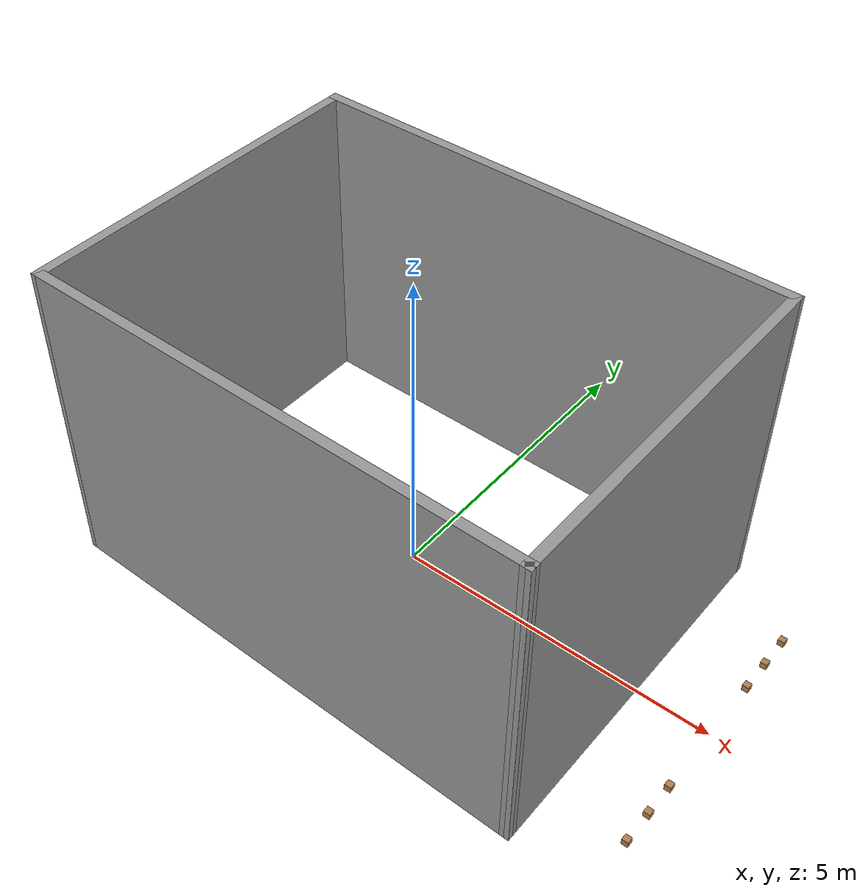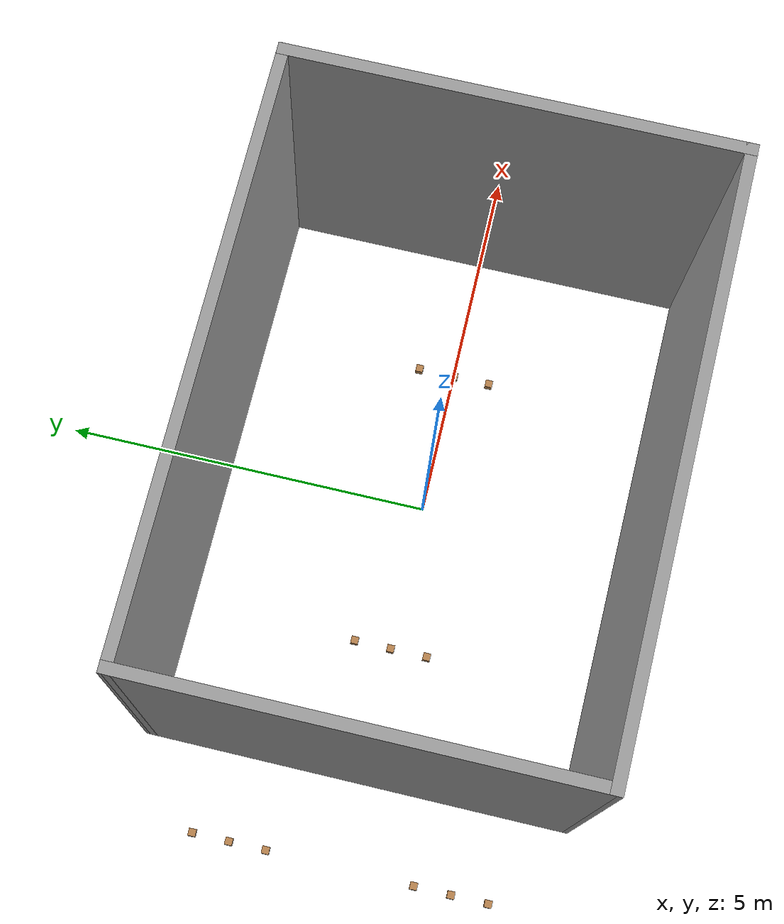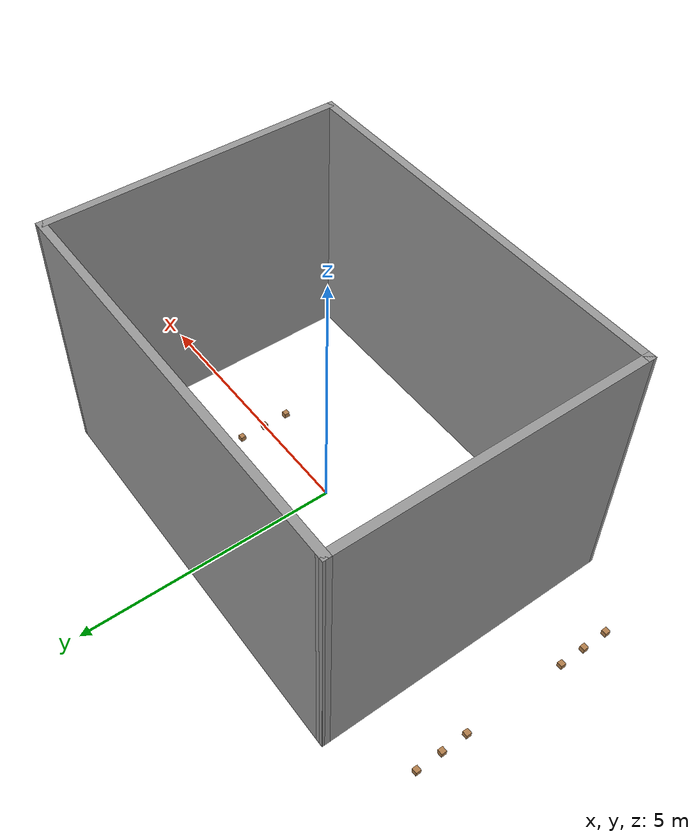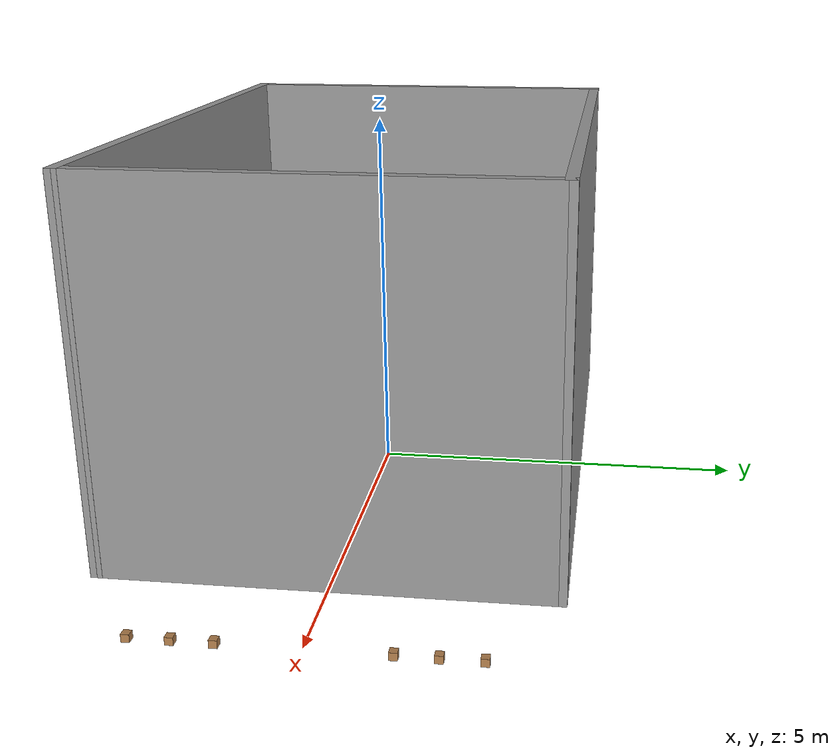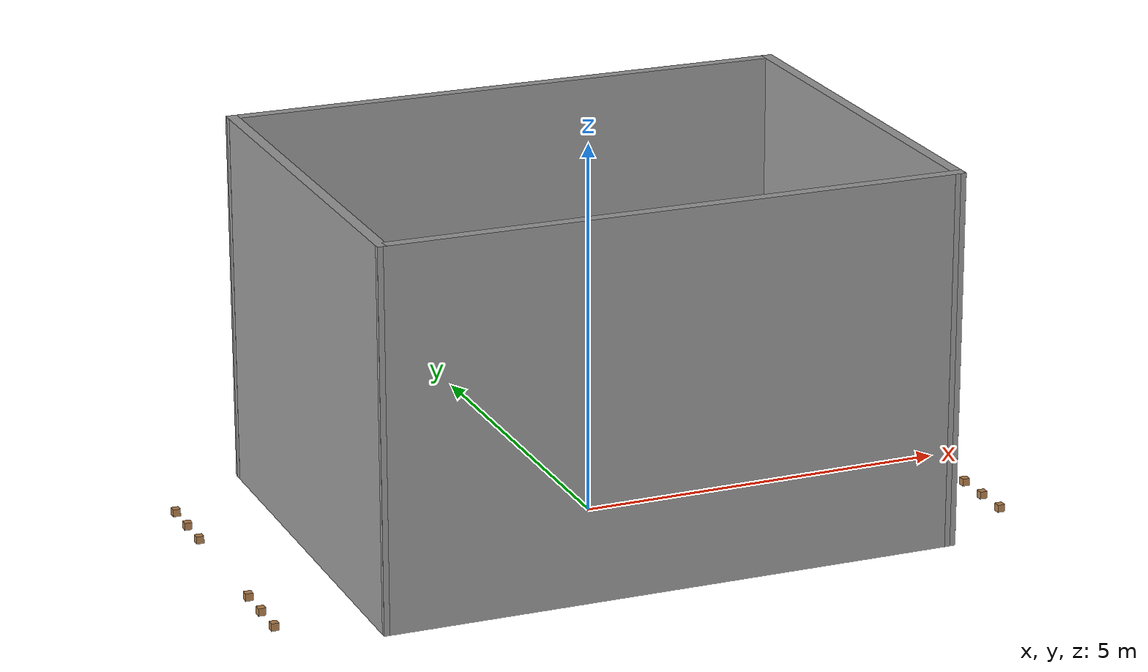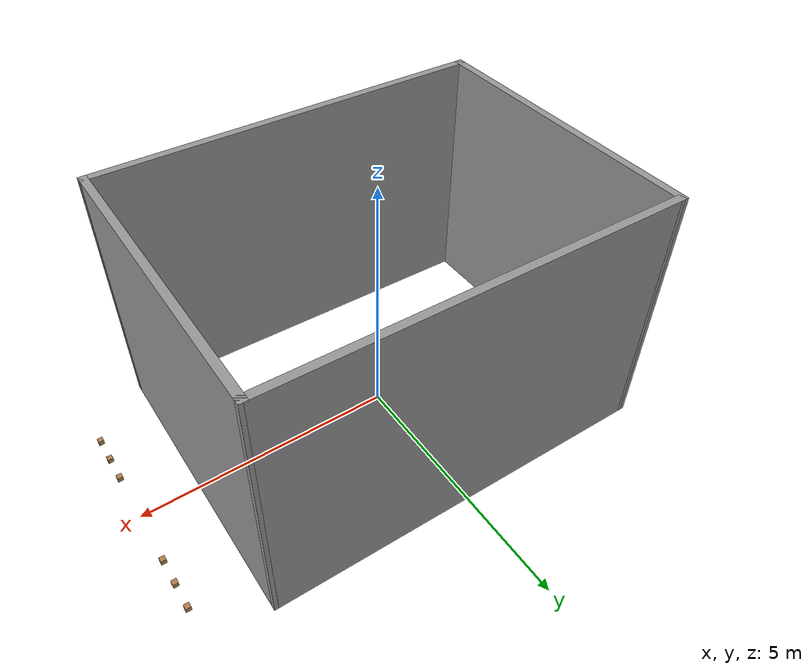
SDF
<?xml version='1.0'?>
<sdf version='1.6'>
  <world name='default'>

    <!-- Camera Pose -->
    <gui fullscreen='0'>
      <camera name='user_camera'>
        <pose>-15 0 15 0 0.785398 -0</pose>
      </camera>
    </gui>

    <!-- physics -->
    <physics type='ode'>
      <max_step_size>0.001</max_step_size>
      <real_time_update_rate>1000</real_time_update_rate>
    </physics>

    <!-- sun -->
    <include>
      <uri>model://sun</uri>
    </include>

    <!-- simple_room -->
    <include>
      <name>simple_room__boxes_small</name>
      <uri>model://simple_room</uri>
      <pose>0 0 0 0 0 0</pose>
    </include>

    <!-- box 1 -->
    <include>
      <name>box_1</name>
      <uri>model://box_small</uri>
      <pose>-5 1.5 0 0 -0 0</pose>
    </include>
    <include>
      <name>box_1-1</name>
      <uri>model://box_small</uri>
      <pose>-5 1 0 0 -0 0</pose>
    </include>
    <include>
      <name>box_1-2</name>
      <uri>model://box_small</uri>
      <pose>-5 2 0 0 -0 0</pose>
    </include>

    <!-- box 2 -->
    <include>
      <name>box_2</name>
      <uri>model://box_small</uri>
      <pose>-5 -1.5 0 0 -0 0</pose>
    </include>
    <include>
      <name>box_2-1</name>
      <uri>model://box_small</uri>
      <pose>-5 -2 0 0 -0 0</pose>
    </include>
    <include>
      <name>box_2-2</name>
      <uri>model://box_small</uri>
      <pose>-5 -1 0 0 -0 0</pose>
    </include>

    <!-- box 3 -->
    <include>
      <name>box_3</name>
      <uri>model://box_small</uri>
      <pose>-2 0 0 0 -0 0</pose>
    </include>
    <include>
      <name>box_3-1</name>
      <uri>model://box_small</uri>
      <pose>-2 -0.5 0 0 -0 0</pose>
    </include>
    <include>
      <name>box_3-2</name>
      <uri>model://box_small</uri>
      <pose>-2 0.5 0 0 -0 0</pose>
    </include>

    <!-- box 4 -->
    <include>
      <name>box_4</name>
      <uri>model://box_small</uri>
      <pose>2 0 0 0 -0 0</pose>
    </include>
    <include>
      <name>box_4-1</name>
      <uri>model://box_small</uri>
      <pose>2 -0.5 0 0 -0 0</pose>
    </include>
    <include>
      <name>box_4-2</name>
      <uri>model://box_small</uri>
      <pose>2 0.5 0 0 -0 0</pose>
    </include>

    <!-- box 5 -->
    <include>
      <name>box_5</name>
      <uri>model://box_small</uri>
      <pose>5 1.5 0 0 -0 0</pose>
    </include>
    <include>
      <name>box_5-1</name>
      <uri>model://box_small</uri>
      <pose>5 1 0 0 -0 0</pose>
    </include>
    <include>
      <name>box_5-2</name>
      <uri>model://box_small</uri>
      <pose>5 2 0 0 -0 0</pose>
    </include>

    <!-- box 6 -->
    <include>
      <name>box_6</name>
      <uri>model://box_small</uri>
      <pose>5 -1.5 0 0 -0 0</pose>
    </include>
    <include>
      <name>box_6-1</name>
      <uri>model://box_small</uri>
      <pose>5 -2 0 0 -0 0</pose>
    </include>
    <include>
      <name>box_6-2</name>
      <uri>model://box_small</uri>
      <pose>5 -1 0 0 -0 0</pose>
    </include>

    <!-- locals -->
    <plugin name="locals_data" filename="lib_locals_publisher.so">
      <local name="start">-6.75 0 0 0 0 0</local>
      <local name="goal">6.75 0 0 0 0 0</local>
    </plugin>

  </world>
</sdf>

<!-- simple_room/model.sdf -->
<sdf version='1.7'>
  <model name='simple_room'>
    <pose>-0.0625 -0.310997 0 0 -0 0</pose>
    <link name='Wall_2'>
      <collision name='Wall_2_Collision'>
        <geometry>
          <box>
            <size>7.73542 0.15 5</size>
          </box>
        </geometry>
        <pose>0 0 2.5 0 -0 0</pose>
      </collision>
      <visual name='Wall_2_Visual'>
        <pose>0 0 2.5 0 -0 0</pose>
        <geometry>
          <box>
            <size>7.73542 0.15 5</size>
          </box>
        </geometry>
        <material>
          <script>
            <uri>file://media/materials/scripts/gazebo.material</uri>
            <name>Gazebo/Grey</name>
          </script>
          <ambient>1 1 1 1</ambient>
        </material>
        <meta>
          <layer>0</layer>
        </meta>
      </visual>
      <pose>0 -2.8 0 0 -0 -0.01292</pose>
    </link>
    <link name='Wall_3'>
      <collision name='Wall_3_Collision'>
        <geometry>
          <box>
            <size>5.75 0.15 5</size>
          </box>
        </geometry>
        <pose>0 0 2.5 0 -0 0</pose>
      </collision>
      <visual name='Wall_3_Visual'>
        <pose>0 0 2.5 0 -0 0</pose>
        <geometry>
          <box>
            <size>5.75 0.15 5</size>
          </box>
        </geometry>
        <material>
          <script>
            <uri>file://media/materials/scripts/gazebo.material</uri>
            <name>Gazebo/Grey</name>
          </script>
          <ambient>1 1 1 1</ambient>
        </material>
        <meta>
          <layer>0</layer>
        </meta>
      </visual>
      <pose>3.7925 -0.049003 0 0 -0 1.5708</pose>
    </link>
    <link name='Wall_4'>
      <collision name='Wall_4_Collision'>
        <geometry>
          <box>
            <size>7.73632 0.15 5</size>
          </box>
        </geometry>
        <pose>0 0 2.5 0 -0 0</pose>
      </collision>
      <visual name='Wall_4_Visual'>
        <pose>0 0 2.5 0 -0 0</pose>
        <geometry>
          <box>
            <size>7.73632 0.15 5</size>
          </box>
        </geometry>
        <material>
          <script>
            <uri>file://media/materials/scripts/gazebo.material</uri>
            <name>Gazebo/Grey</name>
          </script>
          <ambient>1 1 1 1</ambient>
        </material>
        <meta>
          <layer>0</layer>
        </meta>
      </visual>
      <pose>0 2.8 0 0 -0 3.12867</pose>
    </link>
    <link name='Wall_5'>
      <collision name='Wall_5_Collision'>
        <geometry>
          <box>
            <size>5.75 0.15 5</size>
          </box>
        </geometry>
        <pose>0 0 2.5 0 -0 0</pose>
      </collision>
      <visual name='Wall_5_Visual'>
        <pose>0 0 2.5 0 -0 0</pose>
        <geometry>
          <box>
            <size>5.75 0.15 5</size>
          </box>
        </geometry>
        <material>
          <script>
            <uri>file://media/materials/scripts/gazebo.material</uri>
            <name>Gazebo/Grey</name>
          </script>
          <ambient>1 1 1 1</ambient>
        </material>
        <meta>
          <layer>0</layer>
        </meta>
      </visual>
      <pose>-3.7925 0.048997 0 0 -0 -1.5708</pose>
    </link>
    <static>1</static>
  </model>
</sdf>

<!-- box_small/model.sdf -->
<sdf version='1.6'>

  <model name='box_small'>
    <pose>0 0 0 0 0 0</pose>
    <link name='link'>
      <inertial>
        <mass>0.1</mass>
        <inertia>
          <ixx>0.166667</ixx>
          <ixy>0</ixy>
          <ixz>0</ixz>
          <iyy>0.166667</iyy>
          <iyz>0</iyz>
          <izz>0.166667</izz>
        </inertia>
      </inertial>
      <collision name='collision'>
        <geometry>
          <box>
            <size>0.1 0.1 0.1</size>
          </box>
        </geometry>
        <max_contacts>10</max_contacts>
        <surface>
          <contact>
            <ode/>
          </contact>
          <bounce/>
          <friction>
            <torsional>
              <ode/>
            </torsional>
            <ode/>
          </friction>
        </surface>
      </collision>
      <visual name='visual'>
        <geometry>
          <box>
            <size>0.1 0.1 0.1</size>
          </box>
        </geometry>
        <material>
          <script>
            <uri>file://media/materials/scripts/gazebo.material</uri>
            <name>Gazebo/Wood</name>
          </script>
        </material>
      </visual>
      <self_collide>0</self_collide>
      <enable_wind>0</enable_wind>
      <kinematic>0</kinematic>
    </link>
  </model>

</sdf>
